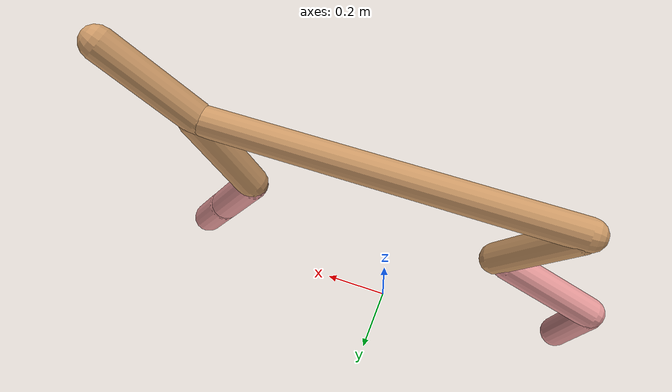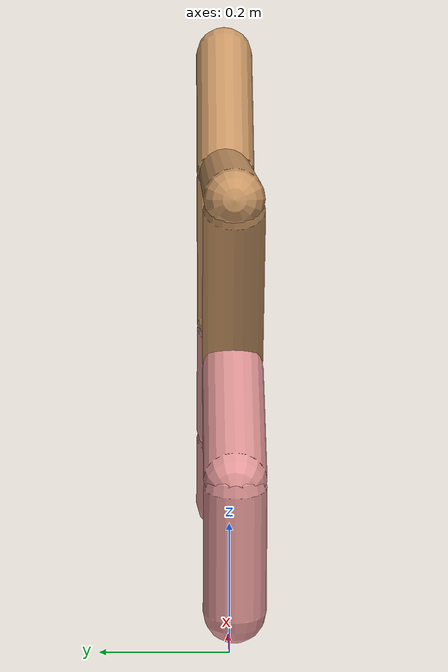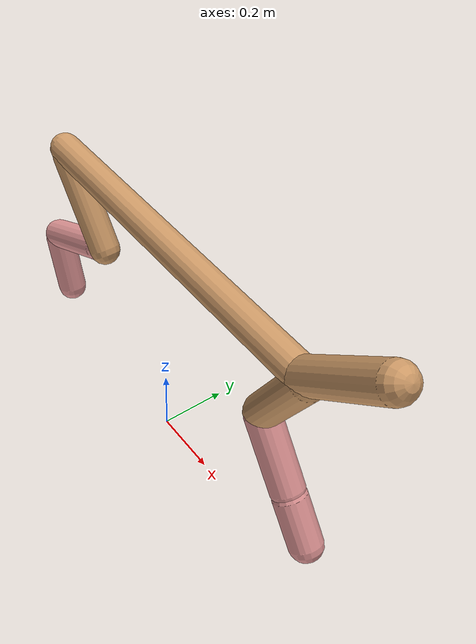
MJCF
<mujoco model="cheetah">
  <compiler angle="radian" coordinate="local" inertiafromgeom="true" settotalmass="14" />
  <default>
    <joint armature=".1" damping=".01" limited="true" solimplimit="0 .8 .03" solreflimit=".02 1" stiffness="8" />
    <geom conaffinity="0" condim="3" contype="1" friction="0.8 .1 .1" rgba="0.8 0.6 .4 1" solimp="0.0 0.8 0.01" solref="0.02 1" />
    <motor ctrllimited="true" ctrlrange="-1 1" />
  </default>
  <size nstack="300000" nuser_geom="1" />
  <option gravity="0 0 -9.81" timestep="0.01" />
  <worldbody>
    <body name="torso" pos="0.0 0.0 0.7162211175855191">
      <joint armature="0" axis="1 0 0" damping="0" limited="false" name="ignorex" pos="0 0 0" stiffness="0" type="slide" />
      <joint armature="0" axis="0 0 1" damping="0" limited="false" name="ignorez" pos="0 0 0" stiffness="0" type="slide" />
      <joint armature="0" axis="0 1 0" damping="0" limited="false" name="ignorey" pos="0 0 0" stiffness="0" type="hinge" />
      <geom fromto="-0.5 0.0 0.0 0.5622097597606671 0.0 0.0" name="torso" size="0.04368514635716743" type="capsule" />
      <geom axisangle="0 1 0 .87" name="head" pos="0.662209759760667 0.0 0.1" size="0.047654315621704905 0.15" type="capsule" />

      <body name="bthigh" pos="-.5 0 0">
        <joint axis="0 1 0" damping="6" name="bthigh" pos="0 0 0" range="-.52 1.05" stiffness="240" type="hinge" />
        <geom axisangle="0 1 0 -3.8" name="bthigh" pos="0.09924890113791064 0.0 -0.12902357147928384" size="0.04433403495591726 0.1437681062721566" type="capsule" />
        <body name="bshin" pos="0.15849780227582128 0.0 -0.24804714295856767">
          <joint axis="0 1 0" damping="4.5" name="bshin" pos="0 0 0" range="-.785 .785" stiffness="180" type="hinge" />
          <geom axisangle="0 1 0 -2.03" name="bshin" pos="-0.13886016629661513 0.0 -0.06943008314830756" rgba="0.9 0.6 0.6 1" size="0.04433403495591726 0.14872562717809304" type="capsule" />
          <body name="bfoot" pos="-0.27772033259323026 0.0 -0.13886016629661513">
            <joint axis="0 1 0" damping="3" name="bfoot" pos="0 0 0" range="-.4 .785" stiffness="120" type="hinge" />
            <geom axisangle="0 1 0 -.27" name="bfoot" pos="0.029764035820324688 0.0 -0.09623704915238317" rgba="0.9 0.6 0.6 1" size="0.04433403495591726 0.09320139303160498" type="capsule" />
            <inertial mass="10" />
          </body>
        </body>
      </body>
      <body name="fthigh" pos="0.562209759760667 0.0 0.0">
        <joint axis="0 1 0" damping="4.5" name="fthigh" pos="0 0 0" range="-1.5 0.8" stiffness="180" type="hinge" />
        <geom axisangle="0 1 0 .52" name="fthigh" pos="-0.07113708755579916 0.0 -0.12194929295279854" size="0.04773979920657919 0.1352567035971486" type="capsule" />
        <body name="fshin" pos="-0.14227417511159832 0.0 -0.24389858590559707">
          <joint axis="0 1 0" damping="3" name="fshin" pos="0 0 0" range="-1.2 1.1" stiffness="120" type="hinge" />
          <geom axisangle="0 1 0 -.6" name="fshin" pos="0.06605304914082294 0.0 -0.09145806804113944" rgba="0.9 0.6 0.6 1" size="0.04773979920657919 0.1077985757992312" type="capsule" />
          <body name="ffoot" pos="0.13210609828164588 0.0 -0.18291613608227889">
            <joint axis="0 1 0" damping="1.5" name="ffoot" pos="0 0 0" range="-3.1 -0.3" stiffness="60" type="hinge" />
            <geom axisangle="0 1 0 -.6" name="ffoot" pos="0.045642278737632935 0.0 -0.07099910025854013" rgba="0.9 0.6 0.6 1" size="0.04773979920657919 0.07118773873534137" type="capsule" />
            <inertial mass="10" />
          </body>
        </body>
      </body>
    </body>
  </worldbody>
  <actuator>
    <motor gear="120" joint="bthigh" name="bthigh" />
    <motor gear="90" joint="bshin" name="bshin" />
    <motor gear="60" joint="bfoot" name="bfoot" />
    <motor gear="120" joint="fthigh" name="fthigh" />
    <motor gear="60" joint="fshin" name="fshin" />
    <motor gear="30" joint="ffoot" name="ffoot" />
  </actuator>
</mujoco>
